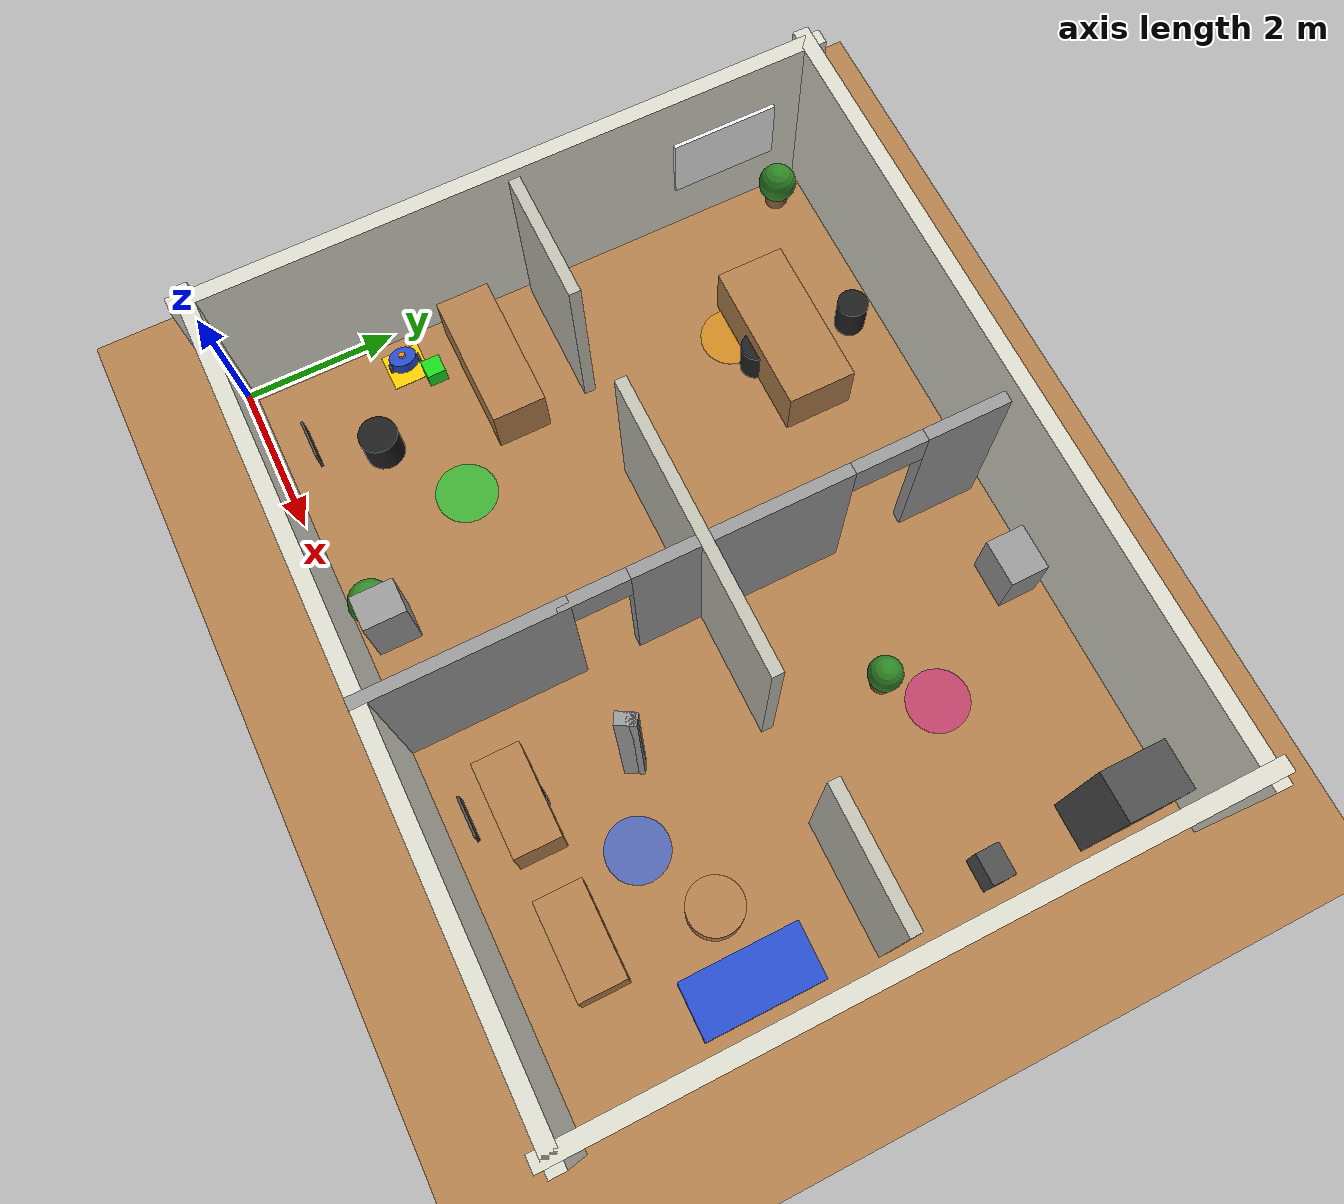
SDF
<sdf version="1.7">
 <world name="office_world">
  <physics name="default_physics" default="1" type="ode">
   <max_step_size>0.001</max_step_size>
   <real_time_factor>1</real_time_factor>
   <real_time_update_rate>1000</real_time_update_rate>
   <ode>
    <solver>
     <type>quick</type>
     <iters>150</iters>
     <precon_iters>0</precon_iters>
     <sor>1.4</sor>
     <use_dynamic_moi_rescaling>0</use_dynamic_moi_rescaling>
    </solver>
    <constraints>
     <cfm>0</cfm>
     <erp>0.2</erp>
     <contact_max_correcting_vel>100</contact_max_correcting_vel>
     <contact_surface_layer>0.001</contact_surface_layer>
    </constraints>
   </ode>
  </physics>
  <scene>
   <ambient>0.5 0.5 0.5 1</ambient>
   <background>0.7 0.7 0.7 1</background>
   <shadows>1</shadows>
   <grid>0</grid>
  </scene>
  <light name="sun" type="directional">
   <pose>0 0 10 0 -0 0</pose>
   <diffuse>0.8 0.8 0.8 1</diffuse>
   <specular>0.2 0.2 0.2 1</specular>
   <attenuation>
    <range>1000</range>
    <constant>0.9</constant>
    <linear>0.01</linear>
    <quadratic>0.001</quadratic>
   </attenuation>
   <direction>-0.5 0.1 -0.9</direction>
   <spot><inner_angle>0</inner_angle><outer_angle>0</outer_angle><falloff>0</falloff></spot>
  </light>
  <light name="ceiling_light_centre" type="point">
   <pose>5 4 3.5 0 0 0</pose>
   <diffuse>0.9 0.88 0.82 1</diffuse>
   <specular>0.3 0.3 0.3 1</specular>
   <attenuation>
    <range>18</range>
    <constant>0.4</constant>
    <linear>0.05</linear>
    <quadratic>0.002</quadratic>
   </attenuation>
   <cast_shadows>0</cast_shadows>
   <direction>0 0 -1</direction>
   <spot><inner_angle>0</inner_angle><outer_angle>0</outer_angle><falloff>0</falloff></spot>
  </light>
  <light name="ceiling_light_south" type="point">
   <pose>5 1.5 3.5 0 0 0</pose>
   <diffuse>0.88 0.86 0.80 1</diffuse>
   <specular>0.2 0.2 0.2 1</specular>
   <attenuation>
    <range>12</range>
    <constant>0.5</constant>
    <linear>0.06</linear>
    <quadratic>0.003</quadratic>
   </attenuation>
   <cast_shadows>0</cast_shadows>
   <direction>0 0 -1</direction>
   <spot><inner_angle>0</inner_angle><outer_angle>0</outer_angle><falloff>0</falloff></spot>
  </light>
  <light name="ceiling_light_north" type="point">
   <pose>5 6.5 3.5 0 0 0</pose>
   <diffuse>0.88 0.86 0.80 1</diffuse>
   <specular>0.2 0.2 0.2 1</specular>
   <attenuation>
    <range>12</range>
    <constant>0.5</constant>
    <linear>0.06</linear>
    <quadratic>0.003</quadratic>
   </attenuation>
   <cast_shadows>0</cast_shadows>
   <direction>0 0 -1</direction>
   <spot><inner_angle>0</inner_angle><outer_angle>0</outer_angle><falloff>0</falloff></spot>
  </light>
  <model name="ground_plane">
   <static>1</static>
   <link name="link">
    <collision name="collision">
     <geometry><plane><normal>0 0 1</normal><size>100 100</size></plane></geometry>
     <surface>
      <contact><collide_bitmask>65535</collide_bitmask></contact>
      <friction><ode><mu>100</mu><mu2>50</mu2></ode></friction>
     </surface>
    </collision>
    <visual name="visual">
     <cast_shadows>0</cast_shadows>
     <geometry><plane><normal>0 0 1</normal><size>100 100</size></plane></geometry>
     <material>
      <script><uri>file://media/materials/scripts/gazebo.material</uri><name>Gazebo/WoodFloor</name></script>
     </material>
    </visual>
   </link>
  </model>
  <model name="wall_south">
   <static>1</static>
   <pose>5 0 1.25 0 -0 0</pose>
   <link name="link">
    <collision name="col"><geometry><box><size>10.4 0.2 2.5</size></box></geometry></collision>
    <visual name="vis">
     <geometry><box><size>10.4 0.2 2.5</size></box></geometry>
     <material><ambient>0.85 0.85 0.8 1</ambient><diffuse>0.85 0.85 0.8 1</diffuse></material>
    </visual>
   </link>
  </model>
  <model name="wall_north">
   <static>1</static>
   <pose>5 8 1.25 0 -0 0</pose>
   <link name="link">
    <collision name="col"><geometry><box><size>10.4 0.2 2.5</size></box></geometry></collision>
    <visual name="vis">
     <geometry><box><size>10.4 0.2 2.5</size></box></geometry>
     <material><ambient>0.85 0.85 0.8 1</ambient><diffuse>0.85 0.85 0.8 1</diffuse></material>
    </visual>
   </link>
  </model>
  <model name="wall_west">
   <static>1</static>
   <pose>0 4 1.25 0 -0 0</pose>
   <link name="link">
    <collision name="col"><geometry><box><size>0.2 8.4 2.5</size></box></geometry></collision>
    <visual name="vis">
     <geometry><box><size>0.2 8.4 2.5</size></box></geometry>
     <material><ambient>0.85 0.85 0.8 1</ambient><diffuse>0.85 0.85 0.8 1</diffuse></material>
    </visual>
   </link>
  </model>
  <model name="wall_east">
   <static>1</static>
   <pose>10 4 1.25 0 -0 0</pose>
   <link name="link">
    <collision name="col"><geometry><box><size>0.2 8.4 2.5</size></box></geometry></collision>
    <visual name="vis">
     <geometry><box><size>0.2 8.4 2.5</size></box></geometry>
     <material><ambient>0.85 0.85 0.8 1</ambient><diffuse>0.85 0.85 0.8 1</diffuse></material>
    </visual>
   </link>
  </model>
  <model name="partition_left">
   <static>1</static>
   <pose>1.05 4 1.25 0 -0 0</pose>
   <link name="link">
    <collision name="col"><geometry><box><size>1.7 0.15 2.5</size></box></geometry></collision>
    <visual name="vis">
     <geometry><box><size>1.7 0.15 2.5</size></box></geometry>
     <material><ambient>0.75 0.75 0.7 1</ambient><diffuse>0.75 0.75 0.7 1</diffuse></material>
    </visual>
   </link>
  </model>
  <model name="partition_centre">
   <static>1</static>
   <pose>5 4 1.25 0 -0 0</pose>
   <link name="link">
    <collision name="col"><geometry><box><size>3.8 0.15 2.5</size></box></geometry></collision>
    <visual name="vis">
     <geometry><box><size>3.8 0.15 2.5</size></box></geometry>
     <material><ambient>0.75 0.75 0.7 1</ambient><diffuse>0.75 0.75 0.7 1</diffuse></material>
    </visual>
   </link>
  </model>
  <model name="partition_right">
   <static>1</static>
   <pose>8.95 4 1.25 0 -0 0</pose>
   <link name="link">
    <collision name="col"><geometry><box><size>1.7 0.15 2.5</size></box></geometry></collision>
    <visual name="vis">
     <geometry><box><size>1.7 0.15 2.5</size></box></geometry>
     <material><ambient>0.75 0.75 0.7 1</ambient><diffuse>0.75 0.75 0.7 1</diffuse></material>
    </visual>
   </link>
  </model>
  <model name="room1_floor_marker">
   <static>1</static>
   <pose>2.5 2 0.005 0 -0 0</pose>
   <link name="link">
    <visual name="vis">
     <geometry><cylinder><radius>0.4</radius><length>0.01</length></cylinder></geometry>
     <material><ambient>0.1 0.8 0.2 0.7</ambient><diffuse>0.1 0.8 0.2 0.7</diffuse></material>
    </visual>
   </link>
  </model>
  <model name="desk_room1">
   <static>1</static>
   <pose>1.2 3 0.4 0 -0 0</pose>
   <link name="link">
    <collision name="col"><geometry><box><size>1.8 0.7 0.76</size></box></geometry></collision>
    <visual name="vis">
     <geometry><box><size>1.8 0.7 0.76</size></box></geometry>
     <material>
      <script><uri>file://media/materials/scripts/gazebo.material</uri><name>Gazebo/Wood</name></script>
     </material>
    </visual>
   </link>
  </model>
  <model name="chair_room1">
   <static>1</static>
   <pose>1.5 1.3 0.25 0 0 0</pose>
   <link name="link">
    <collision name="col">
     <geometry><cylinder><radius>0.25</radius><length>0.5</length></cylinder></geometry>
    </collision>
    <visual name="vis">
     <geometry><cylinder><radius>0.25</radius><length>0.5</length></cylinder></geometry>
     <material>
      <script><uri>file://media/materials/scripts/gazebo.material</uri><name>Gazebo/FlatBlack</name></script>
     </material>
    </visual>
   </link>
  </model>
  <model name="monitor_room1">
   <static>1</static>
   <pose>1.5 0.55 0.95 0 0 0</pose>
   <link name="link">
    <visual name="vis">
     <geometry><box><size>0.5 0.03 0.32</size></box></geometry>
     <material>
      <script><uri>file://media/materials/scripts/gazebo.material</uri><name>Gazebo/DarkGrey</name></script>
     </material>
    </visual>
   </link>
  </model>
  <model name="plant_room1">
   <static>1</static>
   <pose>3.5 0.4 0.35 0 0 0</pose>
   <link name="link">
    <collision name="col">
     <geometry><cylinder><radius>0.18</radius><length>0.7</length></cylinder></geometry>
    </collision>
    <visual name="pot">
     <pose>0 0 -0.15 0 0 0</pose>
     <geometry><cylinder><radius>0.18</radius><length>0.35</length></cylinder></geometry>
     <material><ambient>0.55 0.35 0.2 1</ambient><diffuse>0.6 0.4 0.25 1</diffuse></material>
    </visual>
    <visual name="foliage">
     <pose>0 0 0.15 0 0 0</pose>
     <geometry><sphere><radius>0.28</radius></sphere></geometry>
     <material><ambient>0.15 0.45 0.12 1</ambient><diffuse>0.2 0.55 0.15 1</diffuse></material>
    </visual>
   </link>
  </model>
  <model name="cabinet_room1">
   <static>1</static>
   <pose>3.8 0.5 0.6 0 -0 0</pose>
   <link name="link">
    <collision name="col"><geometry><box><size>0.45 0.55 1.0</size></box></geometry></collision>
    <visual name="vis">
     <geometry><box><size>0.45 0.55 1.0</size></box></geometry>
     <material>
      <script><uri>file://media/materials/scripts/gazebo.material</uri><name>Gazebo/Grey</name></script>
     </material>
    </visual>
   </link>
  </model>
  <model name="room2_floor_marker">
   <static>1</static>
   <pose>7.5 2 0.005 0 -0 0</pose>
   <link name="link">
    <visual name="vis">
     <geometry><cylinder><radius>0.4</radius><length>0.01</length></cylinder></geometry>
     <material><ambient>0.2 0.4 0.9 0.7</ambient><diffuse>0.2 0.4 0.9 0.7</diffuse></material>
    </visual>
   </link>
  </model>
  <model name="desk_room2_a">
   <static>1</static>
   <pose>6.5 1 0.4 0 -0 0</pose>
   <link name="link">
    <collision name="col"><geometry><box><size>1.2 0.6 0.76</size></box></geometry></collision>
    <visual name="vis">
     <geometry><box><size>1.2 0.6 0.76</size></box></geometry>
     <material>
      <script><uri>file://media/materials/scripts/gazebo.material</uri><name>Gazebo/Wood</name></script>
     </material>
    </visual>
   </link>
  </model>
  <model name="monitor_room2_a">
   <static>1</static>
   <pose>6.5 0.45 0.95 0 0 0</pose>
   <link name="link">
    <visual name="vis">
     <geometry><box><size>0.5 0.03 0.32</size></box></geometry>
     <material>
      <script><uri>file://media/materials/scripts/gazebo.material</uri><name>Gazebo/DarkGrey</name></script>
     </material>
    </visual>
   </link>
  </model>
  <model name="desk_room2_b">
   <static>1</static>
   <pose>8.2 1 0.4 0 -0 0</pose>
   <link name="link">
    <collision name="col"><geometry><box><size>1.2 0.6 0.76</size></box></geometry></collision>
    <visual name="vis">
     <geometry><box><size>1.2 0.6 0.76</size></box></geometry>
     <material>
      <script><uri>file://media/materials/scripts/gazebo.material</uri><name>Gazebo/Wood</name></script>
     </material>
    </visual>
   </link>
  </model>
  <model name="chair_room2_a">
   <static>1</static>
   <pose>6.5 1.1 0.25 0 0 0</pose>
   <link name="link">
    <collision name="col">
     <geometry><cylinder><radius>0.22</radius><length>0.5</length></cylinder></geometry>
    </collision>
    <visual name="vis">
     <geometry><cylinder><radius>0.22</radius><length>0.5</length></cylinder></geometry>
     <material>
      <script><uri>file://media/materials/scripts/gazebo.material</uri><name>Gazebo/FlatBlack</name></script>
     </material>
    </visual>
   </link>
  </model>
  <model name="sofa_room2">
   <static>1</static>
   <pose>9.4 2.5 0.25 0 0 0</pose>
   <link name="link">
    <collision name="col"><geometry><box><size>0.7 1.5 0.5</size></box></geometry></collision>
    <visual name="vis">
     <geometry><box><size>0.7 1.5 0.5</size></box></geometry>
     <material>
      <script><uri>file://media/materials/scripts/gazebo.material</uri><name>Gazebo/Blue</name></script>
     </material>
    </visual>
   </link>
  </model>
  <model name="coffee_table_room2">
   <static>1</static>
   <pose>8.5 2.5 0.2 0 0 0</pose>
   <link name="link">
    <collision name="col">
     <geometry><cylinder><radius>0.35</radius><length>0.4</length></cylinder></geometry>
    </collision>
    <visual name="vis">
     <geometry><cylinder><radius>0.35</radius><length>0.4</length></cylinder></geometry>
     <material>
      <script><uri>file://media/materials/scripts/gazebo.material</uri><name>Gazebo/Wood</name></script>
     </material>
    </visual>
   </link>
  </model>
  <model name="room3_floor_marker">
   <static>1</static>
   <pose>2 6 0.005 0 -0 0</pose>
   <link name="link">
    <visual name="vis">
     <geometry><cylinder><radius>0.4</radius><length>0.01</length></cylinder></geometry>
     <material><ambient>0.9 0.6 0.1 0.7</ambient><diffuse>0.9 0.6 0.1 0.7</diffuse></material>
    </visual>
   </link>
  </model>
  <model name="conf_table_room3">
   <static>1</static>
   <pose>2.5 6.5 0.38 0 -0 0</pose>
   <link name="link">
    <collision name="col"><geometry><box><size>2.0 0.9 0.76</size></box></geometry></collision>
    <visual name="vis">
     <geometry><box><size>2.0 0.9 0.76</size></box></geometry>
     <material>
      <script><uri>file://media/materials/scripts/gazebo.material</uri><name>Gazebo/Wood</name></script>
     </material>
    </visual>
   </link>
  </model>
  <model name="conf_chair_1">
   <static>1</static>
   <pose>1.8 6.8 0.25 0 0 0</pose>
   <link name="link">
    <collision name="col">
     <geometry><cylinder><radius>0.2</radius><length>0.5</length></cylinder></geometry>
    </collision>
    <visual name="vis">
     <geometry><cylinder><radius>0.2</radius><length>0.5</length></cylinder></geometry>
     <material>
      <script><uri>file://media/materials/scripts/gazebo.material</uri><name>Gazebo/FlatBlack</name></script>
     </material>
    </visual>
   </link>
  </model>
  <model name="conf_chair_2">
   <static>1</static>
   <pose>3.2 6.8 0.25 0 0 0</pose>
   <link name="link">
    <collision name="col">
     <geometry><cylinder><radius>0.2</radius><length>0.5</length></cylinder></geometry>
    </collision>
    <visual name="vis">
     <geometry><cylinder><radius>0.2</radius><length>0.5</length></cylinder></geometry>
     <material>
      <script><uri>file://media/materials/scripts/gazebo.material</uri><name>Gazebo/FlatBlack</name></script>
     </material>
    </visual>
   </link>
  </model>
  <model name="conf_chair_3">
   <static>1</static>
   <pose>2.5 7.5 0.25 0 0 0</pose>
   <link name="link">
    <collision name="col">
     <geometry><cylinder><radius>0.2</radius><length>0.5</length></cylinder></geometry>
    </collision>
    <visual name="vis">
     <geometry><cylinder><radius>0.2</radius><length>0.5</length></cylinder></geometry>
     <material>
      <script><uri>file://media/materials/scripts/gazebo.material</uri><name>Gazebo/FlatBlack</name></script>
     </material>
    </visual>
   </link>
  </model>
  <model name="conf_chair_4">
   <static>1</static>
   <pose>2.5 6.1 0.25 0 0 0</pose>
   <link name="link">
    <collision name="col">
     <geometry><cylinder><radius>0.2</radius><length>0.5</length></cylinder></geometry>
    </collision>
    <visual name="vis">
     <geometry><cylinder><radius>0.2</radius><length>0.5</length></cylinder></geometry>
     <material>
      <script><uri>file://media/materials/scripts/gazebo.material</uri><name>Gazebo/FlatBlack</name></script>
     </material>
    </visual>
   </link>
  </model>
  <model name="whiteboard_room3">
   <static>1</static>
   <pose>0.15 6.8 1.3 0 0 0</pose>
   <link name="link">
    <visual name="vis">
     <geometry><box><size>0.05 1.4 0.9</size></box></geometry>
     <material>
      <script><uri>file://media/materials/scripts/gazebo.material</uri><name>Gazebo/White</name></script>
     </material>
    </visual>
   </link>
  </model>
  <model name="plant_room3">
   <static>1</static>
   <pose>0.4 7.5 0.3 0 0 0</pose>
   <link name="link">
    <collision name="col">
     <geometry><cylinder><radius>0.15</radius><length>0.6</length></cylinder></geometry>
    </collision>
    <visual name="pot">
     <pose>0 0 -0.12 0 0 0</pose>
     <geometry><cylinder><radius>0.15</radius><length>0.3</length></cylinder></geometry>
     <material><ambient>0.5 0.32 0.18 1</ambient><diffuse>0.55 0.38 0.22 1</diffuse></material>
    </visual>
    <visual name="foliage">
     <pose>0 0 0.12 0 0 0</pose>
     <geometry><sphere><radius>0.25</radius></sphere></geometry>
     <material><ambient>0.12 0.42 0.1 1</ambient><diffuse>0.18 0.52 0.14 1</diffuse></material>
    </visual>
   </link>
  </model>
  <model name="room4_floor_marker">
   <static>1</static>
   <pose>7.5 6 0.005 0 -0 0</pose>
   <link name="link">
    <visual name="vis">
     <geometry><cylinder><radius>0.4</radius><length>0.01</length></cylinder></geometry>
     <material><ambient>0.8 0.2 0.5 0.7</ambient><diffuse>0.8 0.2 0.5 0.7</diffuse></material>
    </visual>
   </link>
  </model>
  <model name="server_rack_room4">
   <static>1</static>
   <pose>9.5 7 1 0 -0 0</pose>
   <link name="link">
    <collision name="col"><geometry><box><size>0.6 0.8 2.0</size></box></geometry></collision>
    <visual name="vis">
     <geometry><box><size>0.6 0.8 2.0</size></box></geometry>
     <material>
      <script><uri>file://media/materials/scripts/gazebo.material</uri><name>Gazebo/DarkGrey</name></script>
     </material>
    </visual>
   </link>
  </model>
  <model name="printer_room4">
   <static>1</static>
   <pose>6.5 7.5 0.45 0 -0 0</pose>
   <link name="link">
    <collision name="col"><geometry><box><size>0.6 0.5 0.8</size></box></geometry></collision>
    <visual name="vis">
     <geometry><box><size>0.6 0.5 0.8</size></box></geometry>
     <material>
      <script><uri>file://media/materials/scripts/gazebo.material</uri><name>Gazebo/Grey</name></script>
     </material>
    </visual>
   </link>
  </model>
  <model name="ups_room4">
   <static>1</static>
   <pose>9.5 5.5 0.3 0 0 0</pose>
   <link name="link">
    <collision name="col"><geometry><box><size>0.4 0.3 0.6</size></box></geometry></collision>
    <visual name="vis">
     <geometry><box><size>0.4 0.3 0.6</size></box></geometry>
     <material>
      <script><uri>file://media/materials/scripts/gazebo.material</uri><name>Gazebo/DarkGrey</name></script>
     </material>
    </visual>
   </link>
  </model>
  <model name="plant_room4">
   <static>1</static>
   <pose>7.0 5.5 0.3 0 0 0</pose>
   <link name="link">
    <collision name="col">
     <geometry><cylinder><radius>0.15</radius><length>0.6</length></cylinder></geometry>
    </collision>
    <visual name="pot">
     <pose>0 0 -0.12 0 0 0</pose>
     <geometry><cylinder><radius>0.15</radius><length>0.3</length></cylinder></geometry>
     <material><ambient>0.5 0.32 0.18 1</ambient><diffuse>0.55 0.38 0.22 1</diffuse></material>
    </visual>
    <visual name="foliage">
     <pose>0 0 0.12 0 0 0</pose>
     <geometry><sphere><radius>0.22</radius></sphere></geometry>
     <material><ambient>0.12 0.42 0.1 1</ambient><diffuse>0.18 0.52 0.14 1</diffuse></material>
    </visual>
   </link>
  </model>
  <model name="base_station">
   <static>1</static>
   <pose>0.5 2 0.005 0 -0 0</pose>
   <link name="link">
    <visual name="vis">
     <geometry><box><size>0.5 0.5 0.01</size></box></geometry>
     <material><ambient>1 0.8 0 1</ambient><diffuse>1 0.8 0 1</diffuse></material>
    </visual>
   </link>
  </model>
  <model name="delivery_item">
   <static>0</static>
   <pose>0.8 2.3 0.15 0 0 0</pose>
   <link name="link">
    <collision name="col">
     <geometry><box><size>0.25 0.25 0.25</size></box></geometry>
     <surface><friction><ode><mu>0.6</mu><mu2>0.6</mu2></ode></friction></surface>
    </collision>
    <visual name="vis">
     <geometry><box><size>0.25 0.25 0.25</size></box></geometry>
     <material>
      <ambient>0.1 0.85 0.1 1</ambient>
      <diffuse>0.1 0.85 0.1 1</diffuse>
      <emissive>0.0 0.2 0.0 1</emissive>
     </material>
    </visual>
    <inertial>
     <mass>0.5</mass>
     <inertia><ixx>0.003</ixx><iyy>0.003</iyy><izz>0.003</izz><ixy>0</ixy><ixz>0</ixz><iyz>0</iyz></inertia>
    </inertial>
    <kinematic>1</kinematic>
   </link>
  </model>
  <gravity>0 0 -9.8</gravity>
  <magnetic_field>6e-06 2.3e-05 -4.2e-05</magnetic_field>
  <atmosphere type="adiabatic"/>
  <scene><ambient>0.4 0.4 0.4 1</ambient><background>0.7 0.7 0.7 1</background><shadows>1</shadows></scene>
  <audio><device>default</device></audio>
  <spherical_coordinates>
   <surface_model>EARTH_WGS84</surface_model>
   <latitude_deg>0</latitude_deg>
   <longitude_deg>0</longitude_deg>
   <elevation>0</elevation>
   <heading_deg>0</heading_deg>
  </spherical_coordinates>
  <model name="delivery_bot">
   <link name="base_footprint">
    <inertial>
     <pose>-0.002975 0 0.060864 0 -0 0</pose>
     <mass>5.21</mass>
     <inertia>
      <ixx>0.0472787</ixx>
      <ixy>0</ixy>
      <ixz>-0.000555888</ixz>
      <iyy>0.0496351</iyy>
      <iyz>0</iyz>
      <izz>0.0833765</izz>
     </inertia>
    </inertial>
    <collision name="base_footprint_fixed_joint_lump__base_link_collision">
     <pose>0 0 0.06 0 -0 0</pose>
     <geometry><cylinder><length>0.12</length><radius>0.18</radius></cylinder></geometry>
    </collision>
    <collision name="base_footprint_fixed_joint_lump__caster_link_collision_1">
     <pose>-0.155 0 0.025 0 -0 0</pose>
     <geometry><sphere><radius>0.025</radius></sphere></geometry>
     <surface><friction><ode><mu>0</mu><mu2>0</mu2></ode></friction></surface>
    </collision>
    <collision name="base_footprint_fixed_joint_lump__laser_link_collision_2">
     <pose>0 0 0.14 0 -0 0</pose>
     <geometry><cylinder><length>0.04</length><radius>0.04</radius></cylinder></geometry>
    </collision>
    <visual name="base_footprint_fixed_joint_lump__base_link_visual">
     <pose>0 0 0.06 0 -0 0</pose>
     <geometry><cylinder><length>0.12</length><radius>0.18</radius></cylinder></geometry>
     <material>
      <script><name>Gazebo/Blue</name><uri>file://media/materials/scripts/gazebo.material</uri></script>
     </material>
    </visual>
    <visual name="base_footprint_fixed_joint_lump__caster_link_visual_1">
     <pose>-0.155 0 0.025 0 -0 0</pose>
     <geometry><sphere><radius>0.025</radius></sphere></geometry>
     <material>
      <script><name>Gazebo/Black</name><uri>file://media/materials/scripts/gazebo.material</uri></script>
     </material>
    </visual>
    <visual name="base_footprint_fixed_joint_lump__imu_link_visual_2">
     <pose>0 0 0.06 0 -0 0</pose>
     <geometry><box><size>0.02 0.02 0.02</size></box></geometry>
    </visual>
    <visual name="base_footprint_fixed_joint_lump__laser_link_visual_3">
     <pose>0 0 0.14 0 -0 0</pose>
     <geometry><cylinder><length>0.04</length><radius>0.04</radius></cylinder></geometry>
     <material>
      <script><name>Gazebo/Orange</name><uri>file://media/materials/scripts/gazebo.material</uri></script>
     </material>
    </visual>
    <sensor name="imu_sensor" type="imu">
     <always_on>1</always_on>
     <update_rate>100</update_rate>
     <plugin name="gazebo_ros_imu" filename="libgazebo_ros_imu_sensor.so">
      <ros><remapping>~/out:=/imu</remapping></ros>
      <frame_name>imu_link</frame_name>
     </plugin>
     <pose>0 0 0.06 0 -0 0</pose>
    </sensor>
    <sensor name="lidar_sensor" type="ray">
     <always_on>1</always_on>
     <visualize>0</visualize>
     <update_rate>10</update_rate>
     <ray>
      <scan>
       <horizontal>
        <samples>360</samples>
        <resolution>1</resolution>
        <min_angle>-3.14159</min_angle>
        <max_angle>3.14159</max_angle>
       </horizontal>
       <vertical><samples>1</samples><min_angle>0</min_angle><max_angle>0</max_angle></vertical>
      </scan>
      <range><min>0.12</min><max>10</max><resolution>0.01</resolution></range>
      <noise><type>gaussian</type><mean>0</mean><stddev>0.01</stddev></noise>
     </ray>
     <plugin name="gazebo_ros_lidar" filename="libgazebo_ros_ray_sensor.so">
      <ros><remapping>~/out:=/scan</remapping></ros>
      <output_type>sensor_msgs/LaserScan</output_type>
      <frame_name>laser_link</frame_name>
     </plugin>
     <pose>0 0 0.14 0 -0 0</pose>
    </sensor>
   </link>
   <joint name="left_wheel_joint" type="revolute">
    <pose relative_to="base_footprint">0 0.19 0 0 -0 0</pose>
    <parent>base_footprint</parent>
    <child>left_wheel</child>
    <axis>
     <xyz>0 1 0</xyz>
     <limit><lower>-1e+16</lower><upper>1e+16</upper></limit>
     <dynamics>
      <damping>0.1</damping>
      <friction>0.05</friction>
      <spring_reference>0</spring_reference>
      <spring_stiffness>0</spring_stiffness>
     </dynamics>
    </axis>
   </joint>
   <link name="left_wheel">
    <pose relative_to="left_wheel_joint">0 0 0 0 -0 0</pose>
    <inertial>
     <mass>0.5</mass>
     <inertia>
      <ixx>0.000516667</ixx>
      <ixy>0</ixy>
      <ixz>0</ixz>
      <iyy>0.0009</iyy>
      <iyz>0</iyz>
      <izz>0.000516667</izz>
     </inertia>
    </inertial>
    <collision name="left_wheel_collision">
     <pose>0 0 0 1.5708 -0 0</pose>
     <geometry><cylinder><length>0.04</length><radius>0.06</radius></cylinder></geometry>
     <surface>
      <contact><ode><kp>500000</kp><kd>10</kd></ode></contact>
      <friction><ode><mu>1</mu><mu2>1</mu2></ode></friction>
     </surface>
    </collision>
    <visual name="left_wheel_visual">
     <pose>0 0 0 1.5708 -0 0</pose>
     <geometry><cylinder><length>0.04</length><radius>0.06</radius></cylinder></geometry>
     <material>
      <script><name>Gazebo/DarkGrey</name><uri>file://media/materials/scripts/gazebo.material</uri></script>
     </material>
    </visual>
   </link>
   <joint name="right_wheel_joint" type="revolute">
    <pose relative_to="base_footprint">0 -0.19 0 0 -0 0</pose>
    <parent>base_footprint</parent>
    <child>right_wheel</child>
    <axis>
     <xyz>0 1 0</xyz>
     <limit><lower>-1e+16</lower><upper>1e+16</upper></limit>
     <dynamics>
      <damping>0.1</damping>
      <friction>0.05</friction>
      <spring_reference>0</spring_reference>
      <spring_stiffness>0</spring_stiffness>
     </dynamics>
    </axis>
   </joint>
   <link name="right_wheel">
    <pose relative_to="right_wheel_joint">0 0 0 0 -0 0</pose>
    <inertial>
     <mass>0.5</mass>
     <inertia>
      <ixx>0.000516667</ixx>
      <ixy>0</ixy>
      <ixz>0</ixz>
      <iyy>0.0009</iyy>
      <iyz>0</iyz>
      <izz>0.000516667</izz>
     </inertia>
    </inertial>
    <collision name="right_wheel_collision">
     <pose>0 0 0 1.5708 -0 0</pose>
     <geometry><cylinder><length>0.04</length><radius>0.06</radius></cylinder></geometry>
     <surface>
      <contact><ode><kp>500000</kp><kd>10</kd></ode></contact>
      <friction><ode><mu>1</mu><mu2>1</mu2></ode></friction>
     </surface>
    </collision>
    <visual name="right_wheel_visual">
     <pose>0 0 0 1.5708 -0 0</pose>
     <geometry><cylinder><length>0.04</length><radius>0.06</radius></cylinder></geometry>
     <material>
      <script><name>Gazebo/DarkGrey</name><uri>file://media/materials/scripts/gazebo.material</uri></script>
     </material>
    </visual>
   </link>
   <static>0</static>
   <plugin name="differential_drive_controller" filename="libgazebo_ros_diff_drive.so">
    <left_joint>left_wheel_joint</left_joint>
    <right_joint>right_wheel_joint</right_joint>
    <wheel_separation>0.38</wheel_separation>
    <wheel_diameter>0.12</wheel_diameter>
    <max_wheel_torque>20</max_wheel_torque>
    <max_wheel_acceleration>1.0</max_wheel_acceleration>
    <publish_odom>1</publish_odom>
    <publish_odom_tf>1</publish_odom_tf>
    <publish_wheel_tf>0</publish_wheel_tf>
    <odometry_frame>odom</odometry_frame>
    <robot_base_frame>base_footprint</robot_base_frame>
    <ros><remapping>cmd_vel:=/cmd_vel</remapping><remapping>odom:=/odom</remapping></ros>
   </plugin>
   <plugin name="gazebo_ros_joint_state_publisher" filename="libgazebo_ros_joint_state_publisher.so">
    <update_rate>30</update_rate>
    <joint_name>left_wheel_joint</joint_name>
    <joint_name>right_wheel_joint</joint_name>
   </plugin>
   <pose>0.479646 2 0.059925 0 -0.339318 -7e-05</pose>
  </model>
  <model name="door_edited">
   <pose>3.00168 3.82184 0 0 -0 0</pose>
   <link name="Wall_1">
    <pose>2.20757 1.175 0 0 -0 -1.5708</pose>
    <visual name="Wall_1_Visual_0">
     <pose>-2.22591 0 1.25 0 -0 0</pose>
     <geometry><box><size>1.04818 0.15 2.5</size></box></geometry>
     <material>
      <script><uri>file://media/materials/scripts/gazebo.material</uri><name>Gazebo/Grey</name></script>
      <ambient>1 1 1 1</ambient>
     </material>
     <meta><layer>0</layer></meta>
    </visual>
    <collision name="Wall_1_Collision_0">
     <geometry><box><size>1.04818 0.15 2.5</size></box></geometry>
     <pose>-2.22591 0 1.25 0 -0 0</pose>
    </collision>
    <visual name="Wall_1_Visual_1">
     <pose>0.550353 0 1.25 0 -0 0</pose>
     <geometry><box><size>2.70435 0.15 2.5</size></box></geometry>
     <material>
      <script><uri>file://media/materials/scripts/gazebo.material</uri><name>Gazebo/Grey</name></script>
      <ambient>1 1 1 1</ambient>
     </material>
     <meta><layer>0</layer></meta>
    </visual>
    <collision name="Wall_1_Collision_1">
     <geometry><box><size>2.70435 0.15 2.5</size></box></geometry>
     <pose>0.550353 0 1.25 0 -0 0</pose>
    </collision>
    <visual name="Wall_1_Visual_2">
     <pose>-1.25182 0 2.25 0 -0 0</pose>
     <geometry><box><size>0.9 0.15 0.5</size></box></geometry>
     <material>
      <script><uri>file://media/materials/scripts/gazebo.material</uri><name>Gazebo/Grey</name></script>
      <ambient>1 1 1 1</ambient>
     </material>
     <meta><layer>0</layer></meta>
    </visual>
    <collision name="Wall_1_Collision_2">
     <geometry><box><size>0.9 0.15 0.5</size></box></geometry>
     <pose>-1.25182 0 2.25 0 -0 0</pose>
    </collision>
    <visual name="Wall_1_Visual_3">
     <pose>2.32626 0 2.25 0 -0 0</pose>
     <geometry><box><size>0.847472 0.15 0.5</size></box></geometry>
     <material>
      <script><uri>file://media/materials/scripts/gazebo.material</uri><name>Gazebo/Grey</name></script>
      <ambient>1 1 1 1</ambient>
     </material>
     <meta><layer>0</layer></meta>
    </visual>
    <collision name="Wall_1_Collision_3">
     <geometry><box><size>0.847472 0.15 0.5</size></box></geometry>
     <pose>2.32626 0 2.25 0 -0 0</pose>
    </collision>
   </link>
   <link name="Wall_3">
    <collision name="Wall_3_Collision">
     <geometry><box><size>2.5 0.15 2.5</size></box></geometry>
     <pose>0 0 1.25 0 -0 0</pose>
    </collision>
    <visual name="Wall_3_Visual">
     <pose>0 0 1.25 0 -0 0</pose>
     <geometry><box><size>2.5 0.15 2.5</size></box></geometry>
     <material>
      <script><uri>file://media/materials/scripts/gazebo.material</uri><name>Gazebo/Grey</name></script>
      <ambient>1 1 1 1</ambient>
     </material>
     <meta><layer>0</layer></meta>
    </visual>
    <pose>2.20757 -2.675 0 0 -0 -1.5708</pose>
   </link>
   <link name="Wall_5">
    <collision name="Wall_5_Collision">
     <geometry><box><size>0.25 0.15 2.5</size></box></geometry>
     <pose>0 0 1.25 0 -0 0</pose>
    </collision>
    <visual name="Wall_5_Visual">
     <pose>0 0 1.25 0 -0 0</pose>
     <geometry><box><size>0.25 0.15 2.5</size></box></geometry>
     <material>
      <script><uri>file://media/materials/scripts/gazebo.material</uri><name>Gazebo/Grey</name></script>
      <ambient>1 1 1 1</ambient>
     </material>
     <meta><layer>0</layer></meta>
    </visual>
    <pose>3.60757 -1.42513 0 0 -0 -2.0944</pose>
   </link>
   <link name="Wall_6">
    <collision name="Wall_6_Collision">
     <geometry><box><size>0.25 0.15 2.5</size></box></geometry>
     <pose>0 0 1.25 0 -0 0</pose>
    </collision>
    <visual name="Wall_6_Visual">
     <pose>0 0 1.25 0 -0 0</pose>
     <geometry><box><size>0.25 0.15 2.5</size></box></geometry>
     <material>
      <script><uri>file://media/materials/scripts/gazebo.material</uri><name>Gazebo/Grey</name></script>
      <ambient>1 1 1 1</ambient>
     </material>
     <meta><layer>0</layer></meta>
    </visual>
    <pose>3.60757 -1.42513 0 0 -0 1.0472</pose>
   </link>
   <static>1</static>
  </model>
  <plugin name="gazebo_ros_state" filename="libgazebo_ros_state.so">
   <ros><namespace>/gazebo</namespace></ros>
   <update_rate>10.0</update_rate>
  </plugin>
 </world>
</sdf>
